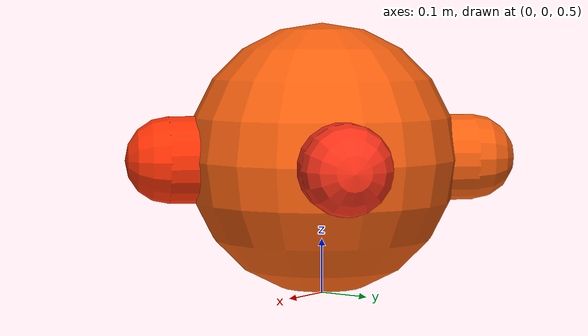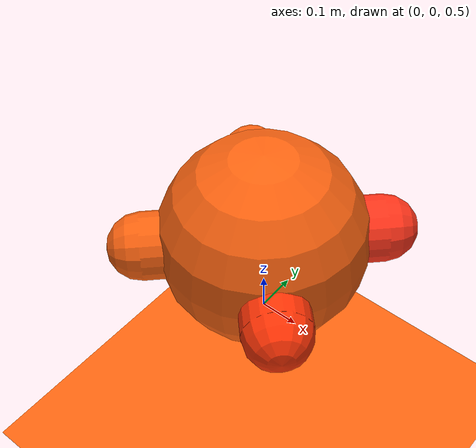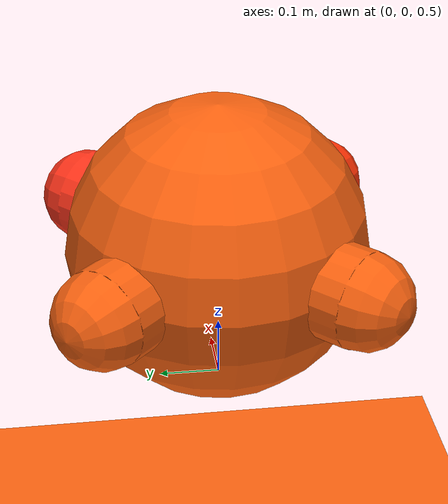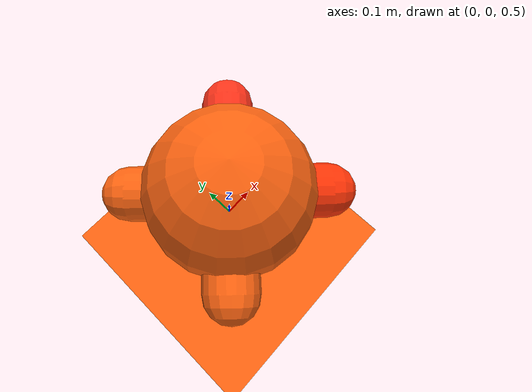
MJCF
<mujoco model="base_ant">

  <default>
    <joint armature="0.01" damping="0.1" limited="true"/>
    <geom condim="3" density="5.0" friction="1.5 0.1 0.1" margin="0.01" rgba="0.97 0.38 0.06 1"/>
  </default>

  <compiler inertiafromgeom="true" angle="degree"/>

  <option timestep="0.016" iterations="50" tolerance="1e-10" solver="Newton" jacobian="dense" cone="pyramidal"/>

  <size nconmax="50" njmax="200" nstack="10000"/>
  <visual>
      <map force="0.1" zfar="30"/>
      <rgba haze="0.15 0.25 0.35 1"/>
      <quality shadowsize="2048"/>
      <global offwidth="800" offheight="800"/>
  </visual>

  <asset>
      <texture type="skybox" builtin="gradient" rgb1="0.3 0.5 0.7" rgb2="0 0 0" width="512" height="512"/>
      <texture name="texplane" type="2d" builtin="checker" rgb1=".2 .3 .4" rgb2=".1 0.15 0.2" width="512" height="512" mark="cross" markrgb=".8 .8 .8"/>
      <texture name="texgeom" type="cube" builtin="flat" mark="cross" width="127" height="1278"
          rgb1="0.8 0.6 0.4" rgb2="0.8 0.6 0.4" markrgb="1 1 1" random="0.01"/>

      <material name="matplane" reflectance="0.3" texture="texplane" texrepeat="1 1" texuniform="true"/>
      <material name="matgeom" texture="texgeom" texuniform="true" rgba="0.8 0.6 .4 1"/>
  </asset>

  <worldbody>
    <geom name="floor" pos="0 0 0" size="0 0 .25" type="plane" material="matplane" condim="3"/>

    <light directional="false" diffuse=".2 .2 .2" specular="0 0 0" pos="0 0 5" dir="0 0 -1" castshadow="false"/>
    <light mode="targetbodycom" target="torso" directional="false" diffuse=".8 .8 .8" specular="0.3 0.3 0.3" pos="0 0 4.0" dir="0 0 -1"/>

    <body name="torso" pos="0 0 0.75">
      <freejoint name="root"/>
      <geom name="torso_geom" pos="0 0 0" size="0.25" type="sphere"/>
      <geom fromto="0.0 0.0 0.0 0.2 0.2 0.0" name="aux_1_geom" size="0.08" type="capsule" rgba=".999 .2 .1 1"/>
      <geom fromto="0.0 0.0 0.0 -0.2 0.2 0.0" name="aux_2_geom" size="0.08" type="capsule"/>
      <geom fromto="0.0 0.0 0.0 -0.2 -0.2 0.0" name="aux_3_geom" size="0.08" type="capsule"/>
      <geom fromto="0.0 0.0 0.0 0.2 -0.2 0.0" name="aux_4_geom" size="0.08" type="capsule" rgba=".999 .2 .02 1"/>
    </body>
  </worldbody>

  <actuator>
  </actuator>
</mujoco>
